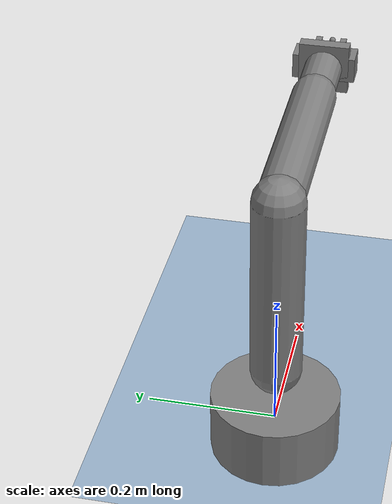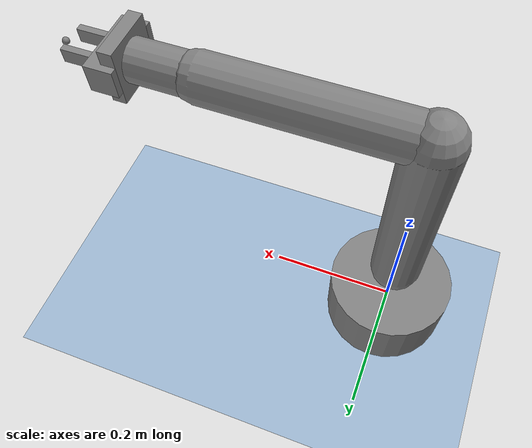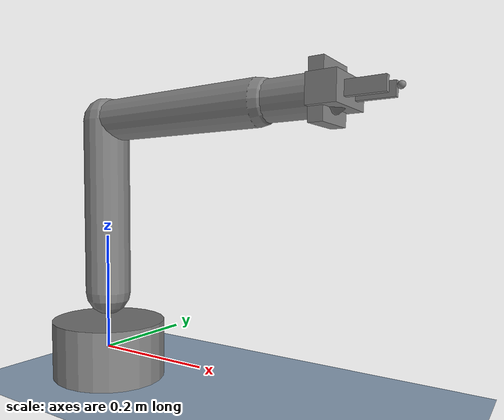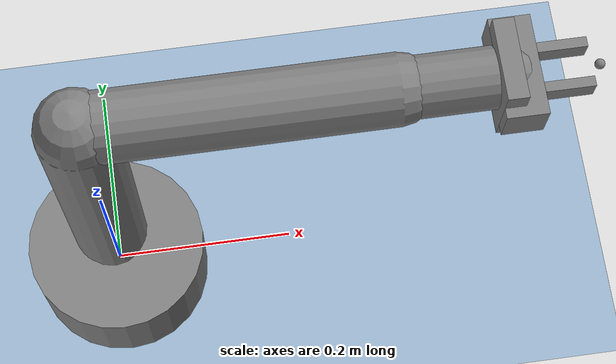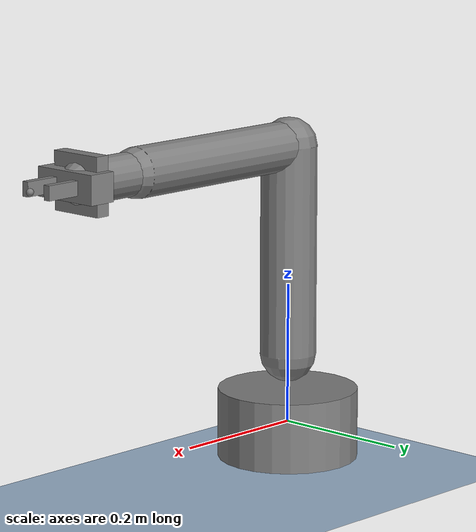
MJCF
<mujoco model="mujoco_arm">
  <compiler angle="radian" autolimits="true"/>
  <!-- Elliptic friction cones with a high impedance ratio keep a held object from
       creeping in a friction grasp, as MuJoCo recommends for grasping. -->
  <option timestep="0.002" integrator="implicitfast" cone="elliptic" impratio="10"/>
  <default>
    <joint damping="1"/>
    <position kp="300" kv="20"/>
  </default>
  <worldbody>
    <light pos="0 0 2"/>
    <!-- A floor for the wrist camera to see. A world geom, not a body, so not a frame. -->
    <geom name="floor" type="plane" pos="0 0 -0.05" size="2 2 0.1" rgba="0.6 0.7 0.8 1"/>
    <body name="base">
      <geom type="cylinder" size="0.1 0.05"/>
      <body name="link1" pos="0 0 0.1">
        <joint name="shoulder" axis="0 0 1"/>
        <geom type="capsule" fromto="0 0 0 0 0 0.3" size="0.04"/>
        <body name="link2" pos="0 0 0.3">
          <joint name="elbow" axis="0 1 0" range="-2 2"/>
          <geom type="capsule" fromto="0 0 0 0.3 0 0" size="0.035"/>
          <body name="link3" pos="0.3 0 0">
            <joint name="wrist" axis="1 0 0" range="-3 3"/>
            <geom type="capsule" fromto="0 0 0 0.1 0 0" size="0.03"/>
            <camera name="wrist_camera" pos="0.05 0 0.05" xyaxes="0 -1 0 1 0 1"/>
            <body pos="0.1 0 0">
              <geom type="box" size="0.01 0.04 0.04"/>
              <body name="flange" pos="0.01 0 0">
                <site name="ft_site"/>
                <body name="gripper">
                  <geom type="box" size="0.02 0.05 0.02"/>
                  <site name="tcp" pos="0.08 0 0"/>
                  <body name="left_finger" pos="0.04 0.02 0">
                    <joint name="left_finger_joint" type="slide" axis="0 1 0" range="0 0.04"/>
                    <geom type="box" size="0.03 0.005 0.01"/>
                  </body>
                  <body name="right_finger" pos="0.04 -0.02 0">
                    <joint name="right_finger_joint" type="slide" axis="0 -1 0" range="0 0.04"/>
                    <geom type="box" size="0.03 0.005 0.01"/>
                  </body>
                </body>
              </body>
            </body>
          </body>
        </body>
      </body>
    </body>
  </worldbody>
  <sensor>
    <!-- A wrist force-torque sensor: the force and torque the arm exerts on the hand. -->
    <force name="wrist_force" site="ft_site"/>
    <torque name="wrist_torque" site="ft_site"/>
  </sensor>
  <contact>
    <exclude body1="base" body2="link2"/>
  </contact>
  <include file="actuators.xml"/>
  <keyframe>
    <key name="home" qpos="0.5 -1 0.25 0.02 0.02" ctrl="0.5 -1 0.25 0.02 0.02"/>
  </keyframe>
</mujoco>

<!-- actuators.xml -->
<!-- Included by arm.xml. -->
<mujoco>
  <actuator>
    <position name="shoulder" joint="shoulder"/>
    <position name="elbow" joint="elbow"/>
    <position name="wrist" joint="wrist"/>
    <position name="left_finger" joint="left_finger_joint" ctrlrange="0 0.04" kp="20" kv="1"/>
    <position name="right_finger" joint="right_finger_joint" ctrlrange="0 0.04" kp="20" kv="1"/>
  </actuator>
</mujoco>
